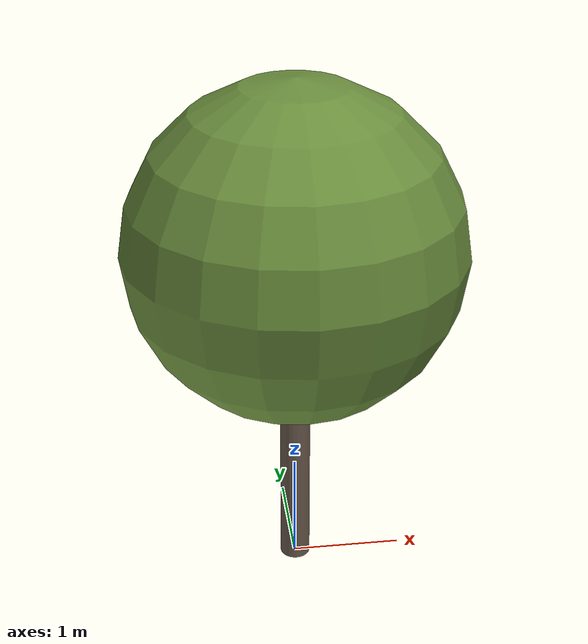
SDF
<?xml version="1.0" ?>
<sdf version="1.10">
  <model name="olivier_provence_03">
    <static>true</static>

    <!-- Tronc -->
    <link name="trunk">
      <pose>0 0 1.3670813915119067 0 0 0</pose>
      <visual name="trunk_visual">
        <geometry>
          <cylinder>
            <radius>0.13708947930328552</radius>
            <length>2.7341627830238133</length>
          </cylinder>
        </geometry>
        <material>
          <ambient>0.42 0.36 0.30 1</ambient>
          <diffuse>0.42 0.36 0.30 1</diffuse>
          <specular>0.1 0.1 0.1 1</specular>
        </material>
      </visual>
      <collision name="trunk_collision">
        <geometry>
          <cylinder>
            <radius>0.13708947930328552</radius>
            <length>2.7341627830238133</length>
          </cylinder>
        </geometry>
      </collision>
    </link>

    <!-- Feuillage -->
    <link name="crown">
      <pose>0 0 3.182775302222824 0 0 0</pose>
      <visual name="crown_visual">
        <geometry>
          <sphere>
              <radius>1.495375063996703</radius>
            </sphere>
        </geometry>
        <material>
          <ambient>0.42 0.56 0.24 1</ambient>
          <diffuse>0.42 0.56 0.24 1</diffuse>
          <specular>0.1 0.1 0.1 1</specular>
        </material>
      </visual>
      <collision name="crown_collision">
        <geometry>
          <sphere>
            <radius>1.1963000511973625</radius>
          </sphere>
        </geometry>
      </collision>
    </link>

    <!-- Joint tronc-feuillage -->
    <joint name="trunk_crown_joint" type="fixed">
      <parent>trunk</parent>
      <child>crown</child>
    </joint>

  </model>
</sdf>
